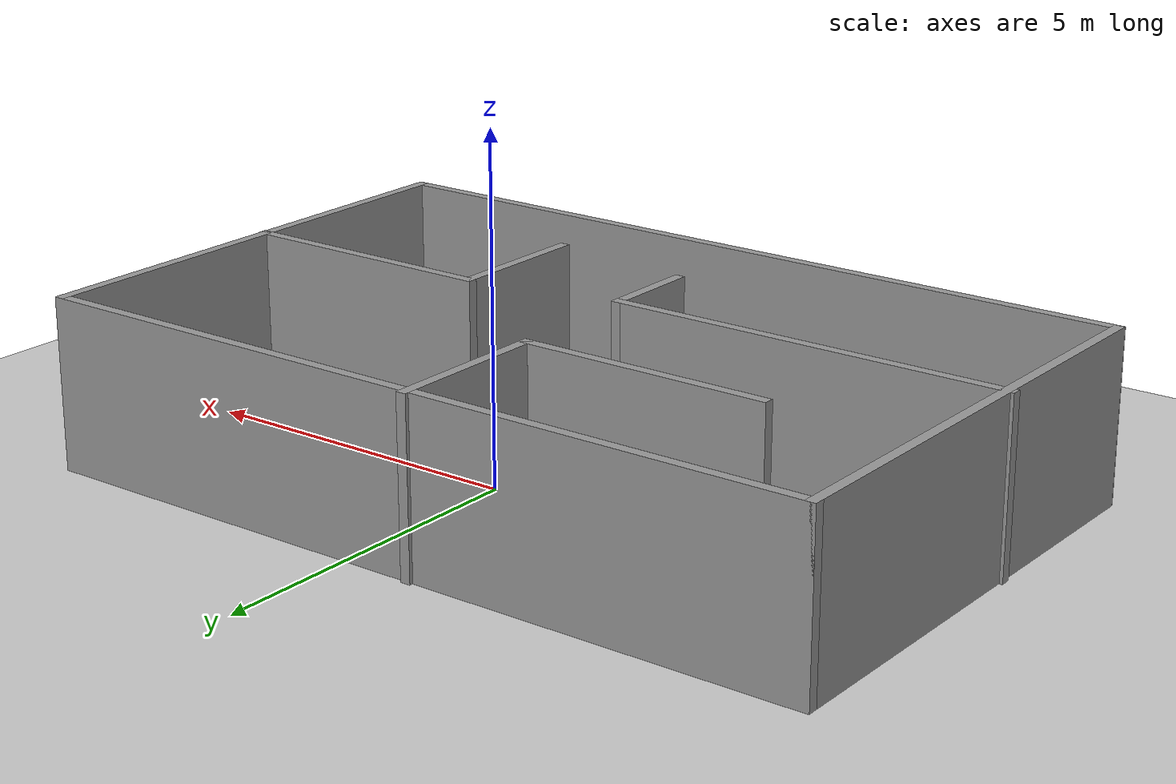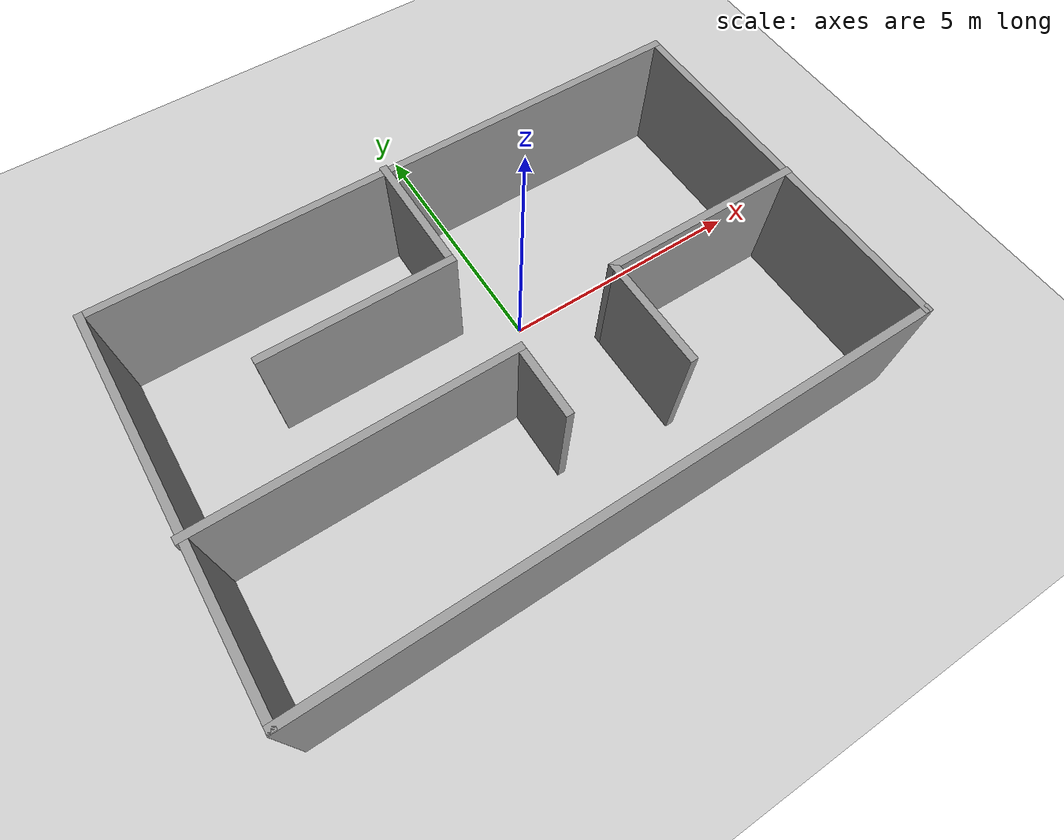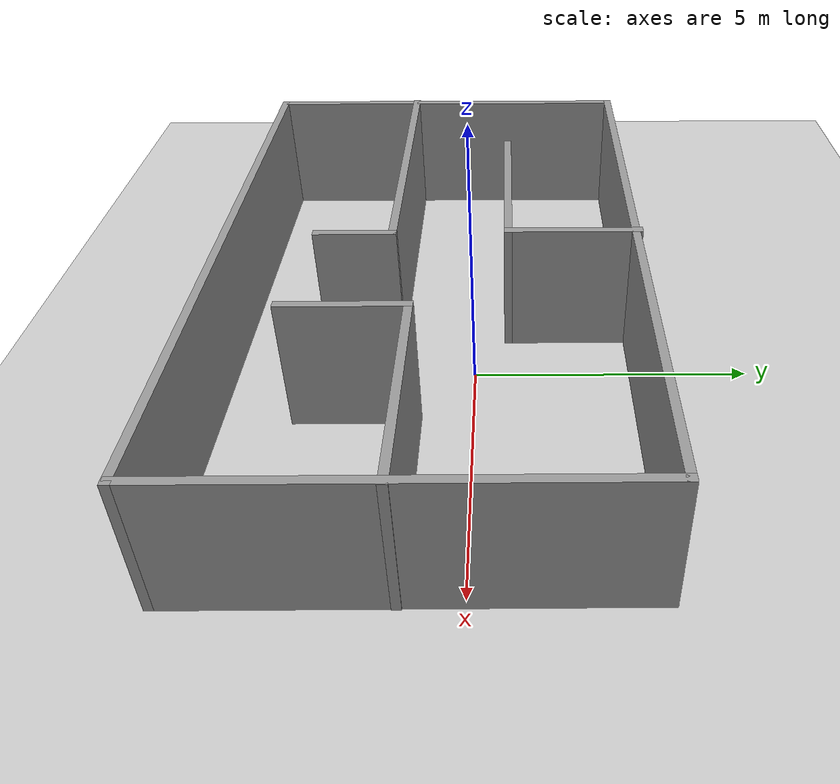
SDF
<sdf version="1.7">
 <world name="default">
  <light name="sun" type="directional">
   <pose>0 0 10 0 -0 0</pose>
   <diffuse>0.8 0.8 0.8 1</diffuse>
   <specular>0.2 0.2 0.2 1</specular>
   <attenuation>
    <range>1000</range>
    <constant>0.9</constant>
    <linear>0.01</linear>
    <quadratic>0.001</quadratic>
   </attenuation>
   <direction>-0.5 0.1 -0.9</direction>
   <spot><inner_angle>0</inner_angle><outer_angle>0</outer_angle><falloff>0</falloff></spot>
  </light>
  <model name="ground_plane">
   <static>1</static>
   <link name="link">
    <collision name="collision">
     <geometry><plane><normal>0 0 1</normal><size>100 100</size></plane></geometry>
     <surface><friction><ode><mu>100</mu><mu2>50</mu2></ode></friction></surface>
    </collision>
    <visual name="visual">
     <cast_shadows>0</cast_shadows>
     <geometry><plane><normal>0 0 1</normal><size>100 100</size></plane></geometry>
     <material>
      <script><uri>file://media/materials/scripts/gazebo.material</uri><name>Gazebo/Grey</name></script>
     </material>
    </visual>
   </link>
  </model>
  <gravity>0 0 -9.8</gravity>
  <magnetic_field>6e-06 2.3e-05 -4.2e-05</magnetic_field>
  <atmosphere type="adiabatic"/>
  <physics type="ode">
   <max_step_size>0.001</max_step_size>
   <real_time_factor>1</real_time_factor>
   <real_time_update_rate>1000</real_time_update_rate>
  </physics>
  <scene><ambient>0.4 0.4 0.4 1</ambient><background>0.7 0.7 0.7 1</background><shadows>1</shadows></scene>
  <audio><device>default</device></audio>
  <spherical_coordinates>
   <surface_model>EARTH_WGS84</surface_model>
   <latitude_deg>0</latitude_deg>
   <longitude_deg>0</longitude_deg>
   <elevation>0</elevation>
   <heading_deg>0</heading_deg>
  </spherical_coordinates>
  <model name="room">
   <pose>-0.87776 -0.738069 0 0 -0 0</pose>
   <link name="Wall_10">
    <collision name="Wall_10_Collision">
     <geometry><box><size>7.5 0.15 2.5</size></box></geometry>
     <pose>0 0 1.25 0 -0 0</pose>
    </collision>
    <visual name="Wall_10_Visual">
     <pose>0 0 1.25 0 -0 0</pose>
     <geometry><box><size>7.5 0.15 2.5</size></box></geometry>
     <material>
      <script><uri>file://media/materials/scripts/gazebo.material</uri><name>Gazebo/Grey</name></script>
      <ambient>1 1 1 1</ambient>
     </material>
     <meta><layer>0</layer></meta>
    </visual>
    <pose>5.942 -0.020972 0 0 -0 -1.5708</pose>
   </link>
   <link name="Wall_12">
    <collision name="Wall_12_Collision">
     <geometry><box><size>7.5 0.15 2.5</size></box></geometry>
     <pose>0 0 1.25 0 -0 0</pose>
    </collision>
    <visual name="Wall_12_Visual">
     <pose>0 0 1.25 0 -0 0</pose>
     <geometry><box><size>7.5 0.15 2.5</size></box></geometry>
     <material>
      <script><uri>file://media/materials/scripts/gazebo.material</uri><name>Gazebo/Grey</name></script>
      <ambient>1 1 1 1</ambient>
     </material>
     <meta><layer>0</layer></meta>
    </visual>
    <pose>-5.90801 -0.020972 0 0 -0 -1.5708</pose>
   </link>
   <link name="Wall_18">
    <collision name="Wall_18_Collision">
     <geometry><box><size>2.5 0.15 2.5</size></box></geometry>
     <pose>0 0 1.25 0 -0 0</pose>
    </collision>
    <visual name="Wall_18_Visual">
     <pose>0 0 1.25 0 -0 0</pose>
     <geometry><box><size>2.5 0.15 2.5</size></box></geometry>
     <material>
      <script><uri>file://media/materials/scripts/gazebo.material</uri><name>Gazebo/Grey</name></script>
      <ambient>1 1 1 1</ambient>
     </material>
     <meta><layer>0</layer></meta>
    </visual>
    <pose>-0.170954 2.53263 0 0 -0 -1.5708</pose>
   </link>
   <link name="Wall_19">
    <collision name="Wall_19_Collision">
     <geometry><box><size>3.75 0.15 2.5</size></box></geometry>
     <pose>0 0 1.25 0 -0 0</pose>
    </collision>
    <visual name="Wall_19_Visual">
     <pose>0 0 1.25 0 -0 0</pose>
     <geometry><box><size>3.75 0.15 2.5</size></box></geometry>
     <material>
      <script><uri>file://media/materials/scripts/gazebo.material</uri><name>Gazebo/Grey</name></script>
      <ambient>1 1 1 1</ambient>
     </material>
     <meta><layer>0</layer></meta>
    </visual>
    <pose>-1.97095 1.35763 0 0 -0 3.14159</pose>
   </link>
   <link name="Wall_21">
    <collision name="Wall_21_Collision">
     <geometry><box><size>6 0.15 2.5</size></box></geometry>
     <pose>0 0 1.25 0 -0 0</pose>
    </collision>
    <visual name="Wall_21_Visual">
     <pose>0 0 1.25 0 -0 0</pose>
     <geometry><box><size>6 0.15 2.5</size></box></geometry>
     <material>
      <script><uri>file://media/materials/scripts/gazebo.material</uri><name>Gazebo/Grey</name></script>
      <ambient>1 1 1 1</ambient>
     </material>
     <meta><layer>0</layer></meta>
    </visual>
    <pose>-3.0321 -0.710875 0 0 -0 0</pose>
   </link>
   <link name="Wall_22">
    <collision name="Wall_22_Collision">
     <geometry><box><size>1.5 0.15 2.5</size></box></geometry>
     <pose>0 0 1.25 0 -0 0</pose>
    </collision>
    <visual name="Wall_22_Visual">
     <pose>0 0 1.25 0 -0 0</pose>
     <geometry><box><size>1.5 0.15 2.5</size></box></geometry>
     <material>
      <script><uri>file://media/materials/scripts/gazebo.material</uri><name>Gazebo/Grey</name></script>
      <ambient>1 1 1 1</ambient>
     </material>
     <meta><layer>0</layer></meta>
    </visual>
    <pose>-0.107097 -1.38587 0 0 -0 -1.5708</pose>
   </link>
   <link name="Wall_24">
    <collision name="Wall_24_Collision">
     <geometry><box><size>4 0.15 2.5</size></box></geometry>
     <pose>0 0 1.25 0 -0 0</pose>
    </collision>
    <visual name="Wall_24_Visual">
     <pose>0 0 1.25 0 -0 0</pose>
     <geometry><box><size>4 0.15 2.5</size></box></geometry>
     <material>
      <script><uri>file://media/materials/scripts/gazebo.material</uri><name>Gazebo/Grey</name></script>
      <ambient>1 1 1 1</ambient>
     </material>
     <meta><layer>0</layer></meta>
    </visual>
    <pose>4.0321 -0.237463 0 0 -0 3.14159</pose>
   </link>
   <link name="Wall_25">
    <collision name="Wall_25_Collision">
     <geometry><box><size>2.25 0.15 2.5</size></box></geometry>
     <pose>0 0 1.25 0 -0 0</pose>
    </collision>
    <visual name="Wall_25_Visual">
     <pose>0 0 1.25 0 -0 0</pose>
     <geometry><box><size>2.25 0.15 2.5</size></box></geometry>
     <material>
      <script><uri>file://media/materials/scripts/gazebo.material</uri><name>Gazebo/Grey</name></script>
      <ambient>1 1 1 1</ambient>
     </material>
     <meta><layer>0</layer></meta>
    </visual>
    <pose>2.1071 -1.28746 0 0 -0 -1.5708</pose>
   </link>
   <link name="Wall_4">
    <collision name="Wall_4_Collision">
     <geometry><box><size>12 0.15 2.5</size></box></geometry>
     <pose>0 0 1.25 0 -0 0</pose>
    </collision>
    <visual name="Wall_4_Visual">
     <pose>0 0 1.25 0 -0 0</pose>
     <geometry><box><size>12 0.15 2.5</size></box></geometry>
     <material>
      <script><uri>file://media/materials/scripts/gazebo.material</uri><name>Gazebo/Grey</name></script>
      <ambient>1 1 1 1</ambient>
     </material>
     <meta><layer>0</layer></meta>
    </visual>
    <pose>0.016996 3.65403 0 0 -0 0</pose>
   </link>
   <link name="Wall_8">
    <collision name="Wall_8_Collision">
     <geometry><box><size>12 0.15 2.5</size></box></geometry>
     <pose>0 0 1.25 0 -0 0</pose>
    </collision>
    <visual name="Wall_8_Visual">
     <pose>0 0 1.25 0 -0 0</pose>
     <geometry><box><size>12 0.15 2.5</size></box></geometry>
     <material>
      <script><uri>file://media/materials/scripts/gazebo.material</uri><name>Gazebo/Grey</name></script>
      <ambient>1 1 1 1</ambient>
     </material>
     <meta><layer>0</layer></meta>
    </visual>
    <pose>0.016996 -3.70763 0 0 -0 3.14159</pose>
   </link>
   <static>1</static>
  </model>
 </world>
</sdf>
